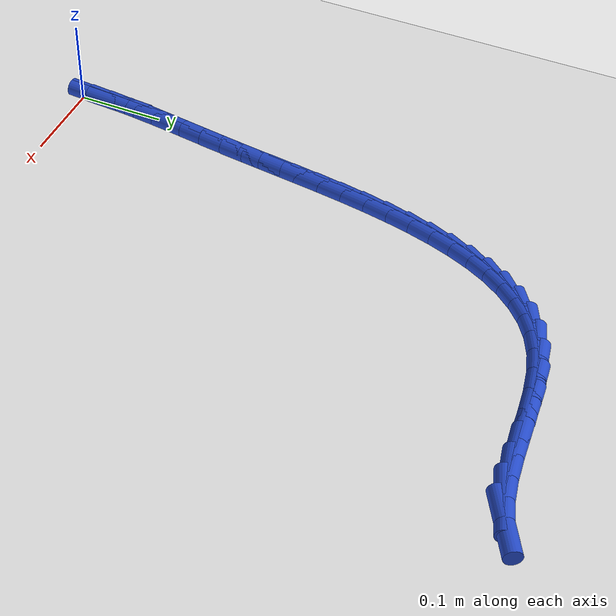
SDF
<sdf version="1.6">
 <world name="default">
  <model name="ground_plane">
   <static>1</static>
   <link name="link">
    <collision name="collision">
     <geometry><plane><normal>0 0 1</normal><size>100 100</size></plane></geometry>
     <surface><friction><ode><mu>100</mu><mu2>50</mu2></ode></friction></surface>
    </collision>
    <visual name="visual">
     <cast_shadows>0</cast_shadows>
     <geometry><plane><normal>0 0 1</normal><size>100 100</size></plane></geometry>
     <material>
      <script><uri>file://media/materials/scripts/gazebo.material</uri><name>Gazebo/WhiteGlow</name></script>
     </material>
    </visual>
   </link>
  </model>
  <model name="line">
   <link name="link_1">
    <pose>0.0010763744634702198 0.025387708287615687 0.01 0 1.57 1.4976860426520275</pose>
    <collision name="collision">
     <geometry><cylinder><radius>0.01</radius><length>0.08</length></cylinder></geometry>
    </collision>
    <visual name="visual">
     <material>
      <script><name>Gazebo/Blue</name><uri>file://media/materials/scripts/gazebo.material</uri></script>
     </material>
     <geometry><cylinder><radius>0.01</radius><length>0.08</length></cylinder></geometry>
    </visual>
   </link>
   <link name="link_2">
    <pose>0.0029248905432477748 0.050626584291068956 0.01 0 1.57 1.4723690824219697</pose>
    <collision name="collision">
     <geometry><cylinder><radius>0.01</radius><length>0.08</length></cylinder></geometry>
    </collision>
    <visual name="visual">
     <material>
      <script><name>Gazebo/Blue</name><uri>file://media/materials/scripts/gazebo.material</uri></script>
     </material>
     <geometry><cylinder><radius>0.01</radius><length>0.08</length></cylinder></geometry>
    </visual>
   </link>
   <link name="link_3">
    <pose>0.005415936411598653 0.07585330206400076 0.01 0 1.57 1.4528524896862378</pose>
    <collision name="collision">
     <geometry><cylinder><radius>0.01</radius><length>0.08</length></cylinder></geometry>
    </collision>
    <visual name="visual">
     <material>
      <script><name>Gazebo/Blue</name><uri>file://media/materials/scripts/gazebo.material</uri></script>
     </material>
     <geometry><cylinder><radius>0.01</radius><length>0.08</length></cylinder></geometry>
    </visual>
   </link>
   <link name="link_4">
    <pose>0.008419900240788843 0.10120453566005193 0.01 0 1.57 1.4393083212164004</pose>
    <collision name="collision">
     <geometry><cylinder><radius>0.01</radius><length>0.08</length></cylinder></geometry>
    </collision>
    <visual name="visual">
     <material>
      <script><name>Gazebo/Blue</name><uri>file://media/materials/scripts/gazebo.material</uri></script>
     </material>
     <geometry><cylinder><radius>0.01</radius><length>0.08</length></cylinder></geometry>
    </visual>
   </link>
   <link name="link_5">
    <pose>0.011807170203084355 0.1268169591328635 0.01 0 1.57 1.4317183328385001</pose>
    <collision name="collision">
     <geometry><cylinder><radius>0.01</radius><length>0.08</length></cylinder></geometry>
    </collision>
    <visual name="visual">
     <material>
      <script><name>Gazebo/Blue</name><uri>file://media/materials/scripts/gazebo.material</uri></script>
     </material>
     <geometry><cylinder><radius>0.01</radius><length>0.08</length></cylinder></geometry>
    </visual>
   </link>
   <link name="link_6">
    <pose>0.015448134470751176 0.1528272465360764 0.01 0 1.57 1.4298988464182738</pose>
    <collision name="collision">
     <geometry><cylinder><radius>0.01</radius><length>0.08</length></cylinder></geometry>
    </collision>
    <visual name="visual">
     <material>
      <script><name>Gazebo/Blue</name><uri>file://media/materials/scripts/gazebo.material</uri></script>
     </material>
     <geometry><cylinder><radius>0.01</radius><length>0.08</length></cylinder></geometry>
    </visual>
   </link>
   <link name="link_7">
    <pose>0.019213181216055294 0.17937207192333138 0.01 0 1.57 1.433528916473025</pose>
    <collision name="collision">
     <geometry><cylinder><radius>0.01</radius><length>0.08</length></cylinder></geometry>
    </collision>
    <visual name="visual">
     <material>
      <script><name>Gazebo/Blue</name><uri>file://media/materials/scripts/gazebo.material</uri></script>
     </material>
     <geometry><cylinder><radius>0.01</radius><length>0.08</length></cylinder></geometry>
    </visual>
   </link>
   <link name="link_8">
    <pose>0.02297269861126272 0.20658810934826954 0.01 0 1.57 1.4420171696211461</pose>
    <collision name="collision">
     <geometry><cylinder><radius>0.01</radius><length>0.08</length></cylinder></geometry>
    </collision>
    <visual name="visual">
     <material>
      <script><name>Gazebo/Blue</name><uri>file://media/materials/scripts/gazebo.material</uri></script>
     </material>
     <geometry><cylinder><radius>0.01</radius><length>0.08</length></cylinder></geometry>
    </visual>
   </link>
   <link name="link_9">
    <pose>0.02660103614277419 0.2346070672586541 0.01 0 1.57 1.4497094799966588</pose>
    <collision name="collision">
     <geometry><cylinder><radius>0.01</radius><length>0.08</length></cylinder></geometry>
    </collision>
    <visual name="visual">
     <material>
      <script><name>Gazebo/Blue</name><uri>file://media/materials/scripts/gazebo.material</uri></script>
     </material>
     <geometry><cylinder><radius>0.01</radius><length>0.08</length></cylinder></geometry>
    </visual>
   </link>
   <link name="link_10">
    <pose>0.030104103244489547 0.26339574043311154 0.01 0 1.57 1.4505761143948817</pose>
    <collision name="collision">
     <geometry><cylinder><radius>0.01</radius><length>0.08</length></cylinder></geometry>
    </collision>
    <visual name="visual">
     <material>
      <script><name>Gazebo/Blue</name><uri>file://media/materials/scripts/gazebo.material</uri></script>
     </material>
     <geometry><cylinder><radius>0.01</radius><length>0.08</length></cylinder></geometry>
    </visual>
   </link>
   <link name="link_11">
    <pose>0.03364675740067169 0.2927216783124141 0.01 0 1.57 1.444638522972636</pose>
    <collision name="collision">
     <geometry><cylinder><radius>0.01</radius><length>0.08</length></cylinder></geometry>
    </collision>
    <visual name="visual">
     <material>
      <script><name>Gazebo/Blue</name><uri>file://media/materials/scripts/gazebo.material</uri></script>
     </material>
     <geometry><cylinder><radius>0.01</radius><length>0.08</length></cylinder></geometry>
    </visual>
   </link>
   <link name="link_12">
    <pose>0.03740335651491582 0.32234052132520546 0.01 0 1.57 1.431982470610407</pose>
    <collision name="collision">
     <geometry><cylinder><radius>0.01</radius><length>0.08</length></cylinder></geometry>
    </collision>
    <visual name="visual">
     <material>
      <script><name>Gazebo/Blue</name><uri>file://media/materials/scripts/gazebo.material</uri></script>
     </material>
     <geometry><cylinder><radius>0.01</radius><length>0.08</length></cylinder></geometry>
    </visual>
   </link>
   <link name="link_13">
    <pose>0.04154825849081716 0.35200790990012915 0.01 0 1.57 1.4124020818260645</pose>
    <collision name="collision">
     <geometry><cylinder><radius>0.01</radius><length>0.08</length></cylinder></geometry>
    </collision>
    <visual name="visual">
     <material>
      <script><name>Gazebo/Blue</name><uri>file://media/materials/scripts/gazebo.material</uri></script>
     </material>
     <geometry><cylinder><radius>0.01</radius><length>0.08</length></cylinder></geometry>
    </visual>
   </link>
   <link name="link_14">
    <pose>0.04625582123197092 0.3814794844658289 0.01 0 1.57 1.3854086551512816</pose>
    <collision name="collision">
     <geometry><cylinder><radius>0.01</radius><length>0.08</length></cylinder></geometry>
    </collision>
    <visual name="visual">
     <material>
      <script><name>Gazebo/Blue</name><uri>file://media/materials/scripts/gazebo.material</uri></script>
     </material>
     <geometry><cylinder><radius>0.01</radius><length>0.08</length></cylinder></geometry>
    </visual>
   </link>
   <link name="link_15">
    <pose>0.0517004026419723 0.4105108854509481 0.01 0 1.57 1.3502236417377473</pose>
    <collision name="collision">
     <geometry><cylinder><radius>0.01</radius><length>0.08</length></cylinder></geometry>
    </collision>
    <visual name="visual">
     <material>
      <script><name>Gazebo/Blue</name><uri>file://media/materials/scripts/gazebo.material</uri></script>
     </material>
     <geometry><cylinder><radius>0.01</radius><length>0.08</length></cylinder></geometry>
    </visual>
   </link>
   <link name="link_16">
    <pose>0.058056360624416554 0.43885775328413046 0.01 0 1.57 1.3057646551096538</pose>
    <collision name="collision">
     <geometry><cylinder><radius>0.01</radius><length>0.08</length></cylinder></geometry>
    </collision>
    <visual name="visual">
     <material>
      <script><name>Gazebo/Blue</name><uri>file://media/materials/scripts/gazebo.material</uri></script>
     </material>
     <geometry><cylinder><radius>0.01</radius><length>0.08</length></cylinder></geometry>
    </visual>
   </link>
   <link name="link_17">
    <pose>0.06549805308289884 0.4662757283940195 0.01 0 1.57 1.250639718339587</pose>
    <collision name="collision">
     <geometry><cylinder><radius>0.01</radius><length>0.08</length></cylinder></geometry>
    </collision>
    <visual name="visual">
     <material>
      <script><name>Gazebo/Blue</name><uri>file://media/materials/scripts/gazebo.material</uri></script>
     </material>
     <geometry><cylinder><radius>0.01</radius><length>0.08</length></cylinder></geometry>
    </visual>
   </link>
   <link name="link_18">
    <pose>0.0741998379210144 0.4925204512092588 0.01 0 1.57 1.1831785969941981</pose>
    <collision name="collision">
     <geometry><cylinder><radius>0.01</radius><length>0.08</length></cylinder></geometry>
    </collision>
    <visual name="visual">
     <material>
      <script><name>Gazebo/Blue</name><uri>file://media/materials/scripts/gazebo.material</uri></script>
     </material>
     <geometry><cylinder><radius>0.01</radius><length>0.08</length></cylinder></geometry>
    </visual>
   </link>
   <link name="link_19">
    <pose>0.08433607304235843 0.517347562158492 0.01 0 1.57 1.1015535062578246</pose>
    <collision name="collision">
     <geometry><cylinder><radius>0.01</radius><length>0.08</length></cylinder></geometry>
    </collision>
    <visual name="visual">
     <material>
      <script><name>Gazebo/Blue</name><uri>file://media/materials/scripts/gazebo.material</uri></script>
     </material>
     <geometry><cylinder><radius>0.01</radius><length>0.08</length></cylinder></geometry>
    </visual>
   </link>
   <link name="link_20">
    <pose>0.09608111635052617 0.5405127016703627 0.01 0 1.57 1.004071236986781</pose>
    <collision name="collision">
     <geometry><cylinder><radius>0.01</radius><length>0.08</length></cylinder></geometry>
    </collision>
    <visual name="visual">
     <material>
      <script><name>Gazebo/Blue</name><uri>file://media/materials/scripts/gazebo.material</uri></script>
     </material>
     <geometry><cylinder><radius>0.01</radius><length>0.08</length></cylinder></geometry>
    </visual>
   </link>
   <link name="link_21">
    <pose>0.10960932574911281 0.5617715101735143 0.01 0 1.57 0.8897297578428682</pose>
    <collision name="collision">
     <geometry><cylinder><radius>0.01</radius><length>0.08</length></cylinder></geometry>
    </collision>
    <visual name="visual">
     <material>
      <script><name>Gazebo/Blue</name><uri>file://media/materials/scripts/gazebo.material</uri></script>
     </material>
     <geometry><cylinder><radius>0.01</radius><length>0.08</length></cylinder></geometry>
    </visual>
   </link>
   <link name="link_22">
    <pose>0.1250950591417136 0.5808796280965908 0.01 0 1.57 0.7590561798899498</pose>
    <collision name="collision">
     <geometry><cylinder><radius>0.01</radius><length>0.08</length></cylinder></geometry>
    </collision>
    <visual name="visual">
     <material>
      <script><name>Gazebo/Blue</name><uri>file://media/materials/scripts/gazebo.material</uri></script>
     </material>
     <geometry><cylinder><radius>0.01</radius><length>0.08</length></cylinder></geometry>
    </visual>
   </link>
   <link name="link_23">
    <pose>0.1427126744319237 0.5975926958682354 0.01 0 1.57 0.6149898415633533</pose>
    <collision name="collision">
     <geometry><cylinder><radius>0.01</radius><length>0.08</length></cylinder></geometry>
    </collision>
    <visual name="visual">
     <material>
      <script><name>Gazebo/Blue</name><uri>file://media/materials/scripts/gazebo.material</uri></script>
     </material>
     <geometry><cylinder><radius>0.01</radius><length>0.08</length></cylinder></geometry>
    </visual>
   </link>
   <link name="link_24">
    <pose>0.1626365295233383 0.6116663539170916 0.01 0 1.57 0.4632069694213006</pose>
    <collision name="collision">
     <geometry><cylinder><radius>0.01</radius><length>0.08</length></cylinder></geometry>
    </collision>
    <visual name="visual">
     <material>
      <script><name>Gazebo/Blue</name><uri>file://media/materials/scripts/gazebo.material</uri></script>
     </material>
     <geometry><cylinder><radius>0.01</radius><length>0.08</length></cylinder></geometry>
    </visual>
   </link>
   <link name="link_25">
    <pose>0.18504098231955268 0.6228562426718033 0.01 0 1.57 0.3150501466540137</pose>
    <collision name="collision">
     <geometry><cylinder><radius>0.01</radius><length>0.08</length></cylinder></geometry>
    </collision>
    <visual name="visual">
     <material>
      <script><name>Gazebo/Blue</name><uri>file://media/materials/scripts/gazebo.material</uri></script>
     </material>
     <geometry><cylinder><radius>0.01</radius><length>0.08</length></cylinder></geometry>
    </visual>
   </link>
   <link name="link_26">
    <pose>0.2100290350860774 0.6309999719050797 0.01 0 1.57 0.20433990257603554</pose>
    <collision name="collision">
     <geometry><cylinder><radius>0.01</radius><length>0.08</length></cylinder></geometry>
    </collision>
    <visual name="visual">
     <material>
      <script><name>Gazebo/Blue</name><uri>file://media/materials/scripts/gazebo.material</uri></script>
     </material>
     <geometry><cylinder><radius>0.01</radius><length>0.08</length></cylinder></geometry>
    </visual>
   </link>
   <link name="link_27">
    <pose>0.23711378121506127 0.6366128055274946 0.01 0 1.57 0.13754254039878605</pose>
    <collision name="collision">
     <geometry><cylinder><radius>0.01</radius><length>0.08</length></cylinder></geometry>
    </collision>
    <visual name="visual">
     <material>
      <script><name>Gazebo/Blue</name><uri>file://media/materials/scripts/gazebo.material</uri></script>
     </material>
     <geometry><cylinder><radius>0.01</radius><length>0.08</length></cylinder></geometry>
    </visual>
   </link>
   <link name="link_28">
    <pose>0.2655172899207083 0.6405443196583519 0.01 0 1.57 0.10677552042237404</pose>
    <collision name="collision">
     <geometry><cylinder><radius>0.01</radius><length>0.08</length></cylinder></geometry>
    </collision>
    <visual name="visual">
     <material>
      <script><name>Gazebo/Blue</name><uri>file://media/materials/scripts/gazebo.material</uri></script>
     </material>
     <geometry><cylinder><radius>0.01</radius><length>0.08</length></cylinder></geometry>
    </visual>
   </link>
   <link name="link_29">
    <pose>0.2944595799850303 0.6436464458381436 0.01 0 1.57 0.10844228253412252</pose>
    <collision name="collision">
     <geometry><cylinder><radius>0.01</radius><length>0.08</length></cylinder></geometry>
    </collision>
    <visual name="visual">
     <material>
      <script><name>Gazebo/Blue</name><uri>file://media/materials/scripts/gazebo.material</uri></script>
     </material>
     <geometry><cylinder><radius>0.01</radius><length>0.08</length></cylinder></geometry>
    </visual>
   </link>
   <link name="link_30">
    <pose>0.3231606701900389 0.6467711156073614 0.01 0 1.57 0.1434853802040433</pose>
    <collision name="collision">
     <geometry><cylinder><radius>0.01</radius><length>0.08</length></cylinder></geometry>
    </collision>
    <visual name="visual">
     <material>
      <script><name>Gazebo/Blue</name><uri>file://media/materials/scripts/gazebo.material</uri></script>
     </material>
     <geometry><cylinder><radius>0.01</radius><length>0.08</length></cylinder></geometry>
    </visual>
   </link>
   <link name="link_31">
    <pose>0.35084057931774626 0.6507702605064981 0.01 0 1.57 0.21773782115448276</pose>
    <collision name="collision">
     <geometry><cylinder><radius>0.01</radius><length>0.08</length></cylinder></geometry>
    </collision>
    <visual name="visual">
     <material>
      <script><name>Gazebo/Blue</name><uri>file://media/materials/scripts/gazebo.material</uri></script>
     </material>
     <geometry><cylinder><radius>0.01</radius><length>0.08</length></cylinder></geometry>
    </visual>
   </link>
   <link name="link_32">
    <pose>0.37671932615016385 0.6564958120760451 0.01 0 1.57 0.34238872530657055</pose>
    <collision name="collision">
     <geometry><cylinder><radius>0.01</radius><length>0.08</length></cylinder></geometry>
    </collision>
    <visual name="visual">
     <material>
      <script><name>Gazebo/Blue</name><uri>file://media/materials/scripts/gazebo.material</uri></script>
     </material>
     <geometry><cylinder><radius>0.01</radius><length>0.08</length></cylinder></geometry>
    </visual>
   </link>
   <link name="link_33">
    <pose>0.4000169294693037 0.6647997018564946 0.01 0 1.57 0.5319781454603224</pose>
    <collision name="collision">
     <geometry><cylinder><radius>0.01</radius><length>0.08</length></cylinder></geometry>
    </collision>
    <visual name="visual">
     <material>
      <script><name>Gazebo/Blue</name><uri>file://media/materials/scripts/gazebo.material</uri></script>
     </material>
     <geometry><cylinder><radius>0.01</radius><length>0.08</length></cylinder></geometry>
    </visual>
   </link>
   <link name="link_281">
    <pose>0.0011019668425115035 0.025354402929407986 0.01 0 1.57 1.489885456816945</pose>
    <collision name="collision">
     <geometry><cylinder><radius>0.01</radius><length>0.08</length></cylinder></geometry>
    </collision>
    <visual name="visual">
     <material>
      <script><name>Gazebo/Blue</name><uri>file://media/materials/scripts/gazebo.material</uri></script>
     </material>
     <geometry><cylinder><radius>0.01</radius><length>0.08</length></cylinder></geometry>
    </visual>
   </link>
   <link name="link_282">
    <pose>0.003129629575578075 0.050360141425408275 0.01 0 1.57 1.5087311712327724</pose>
    <collision name="collision">
     <geometry><cylinder><radius>0.01</radius><length>0.08</length></cylinder></geometry>
    </collision>
    <visual name="visual">
     <material>
      <script><name>Gazebo/Blue</name><uri>file://media/materials/scripts/gazebo.material</uri></script>
     </material>
     <geometry><cylinder><radius>0.01</radius><length>0.08</length></cylinder></geometry>
    </visual>
   </link>
  </model>
 </world>
</sdf>
